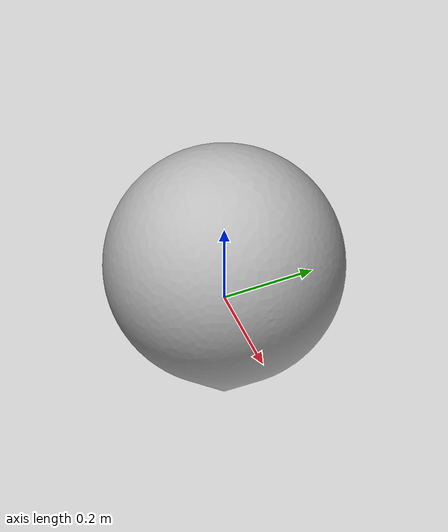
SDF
<?xml version="1.0" ?>
<sdf version="1.5">
  <model name="balloon_orange">
	  <static>0</static>
	<link name="link">
      <pose>0 0 0.1 0 0 0</pose>
      <inertial>
        <mass>0.3</mass>
        <inertia>
          <ixx>0.08611666666666669</ixx>
          <ixy>0</ixy>
          <ixz>0</ixz>
          <iyy>0.08611666666666669</iyy>
          <iyz>0</iyz>
          <izz>0.08611666666666669</izz>
        </inertia>
      </inertial>

      <collision name="collision_balloon">
        <pose>0 0 2.0 0 0 0</pose>
        <geometry>
          <mesh>
            <uri>model://balloon_orange/meshes/balonek.stl</uri>
          </mesh>
        </geometry>
        <surface>
          <contact>
            <poissons_ratio>0.347</poissons_ratio>
            <elastic_modulus>8.8e+09</elastic_modulus>
            <ode>
              <kp>100000</kp>
              <kd>100</kd>
              <max_vel>100.0</max_vel>
              <min_depth>0.001</min_depth>
            </ode>
          </contact>
          <friction>
            <torsional>
              <coefficient>1.0</coefficient>
              <use_patch_radius>0</use_patch_radius>
              <surface_radius>0.01</surface_radius>
            </torsional>
          </friction>
        </surface>
      </collision>

      <visual name="balloon">
        <pose>0 0 0 0 0 0</pose>
        <geometry>
          <mesh>
            <uri>model://balloon_orange/meshes/balonek.stl</uri>
          </mesh>
        </geometry>
        <material>
          <script>
            <uri>model://balloon_orange/scripts</uri>
            <uri>model://balloon_orange/materials/textures</uri>
            <name>BalloonOrange/Balloon</name>
          </script>
        </material>
      </visual>

    </link>
  </model>
</sdf>
